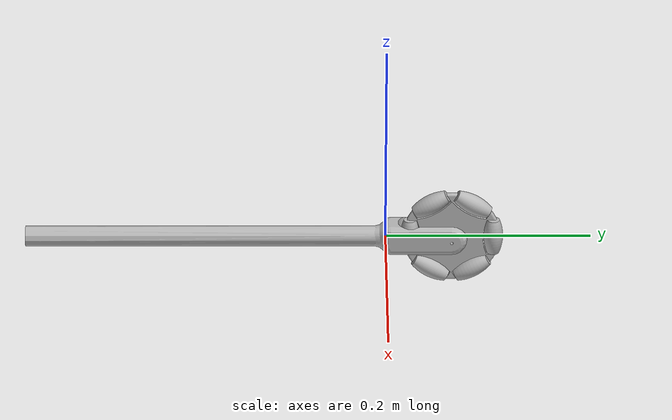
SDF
<sdf version='1.7'>
  <model name='stick_omni'>
    <link name='base_link'>
      <inertial>
        <pose>-0.000218 -0.130881 -1e-05 0 -0 0</pose>
        <mass>0.140488</mass>
        <inertia>
          <ixx>0.00215345</ixx>
          <ixy>7.88297e-11</ixy>
          <ixz>3.19074e-11</ixz>
          <iyy>1.09868e-05</iyy>
          <iyz>2.72267e-10</iyz>
          <izz>0.00215502</izz>
        </inertia>
      </inertial>
      <collision name='base_link_collision'>
        <pose>0 0 0 0 -0 0</pose>
        <geometry>
          <mesh>
            <scale>1 1 1</scale>
            <uri>model://stick_omni/meshes/base_link.STL</uri>
          </mesh>
        </geometry>
      </collision>
      <visual name='base_link_visual'>
        <pose>0 0 0 0 -0 0</pose>
        <geometry>
          <mesh>
            <scale>1 1 1</scale>
            <uri>model://stick_omni/meshes/base_link.STL</uri>
          </mesh>
        </geometry>
      </visual>
    </link>
    <joint name='joint_wheel' type='revolute'>
      <pose relative_to='base_link'>0 0.064488 0 -1.57079 -1.57079 -3.14159</pose>
      <parent>base_link</parent>
      <child>wheel</child>
      <axis>
        <xyz>0 1 0</xyz>
        <limit>
          <lower>-1e+16</lower>
          <upper>1e+16</upper>
        </limit>
        <dynamics>
          <damping>0</damping>
          <friction>0</friction>
          <spring_reference>0</spring_reference>
          <spring_stiffness>0</spring_stiffness>
        </dynamics>
      </axis>
    </joint>
    <link name='wheel'>
      <pose relative_to='joint_wheel'>0 0 0 0 -0 0</pose>
      <inertial>
        <pose>-1e-05 0.000218 -0 0 -0 0</pose>
        <mass>0.0242061</mass>
        <inertia>
          <ixx>7.57781e-06</ixx>
          <ixy>1.4672e-22</ixy>
          <ixz>1.34364e-20</ixz>
          <iyy>1.49068e-05</iyy>
          <iyz>1.52877e-22</iyz>
          <izz>7.57781e-06</izz>
        </inertia>
      </inertial>
      <collision name='wheel_collision'>
        <pose>0 0 0 0 -0 0</pose>
        <geometry>
          <mesh>
            <scale>1 1 1</scale>
            <uri>model://stick_omni/meshes/wheel.STL</uri>
          </mesh>
        </geometry>
      </collision>
      <visual name='wheel_visual'>
        <pose>0 0 0 0 -0 0</pose>
        <geometry>
          <mesh>
            <scale>1 1 1</scale>
            <uri>model://stick_omni/meshes/wheel.STL</uri>
          </mesh>
        </geometry>
      </visual>
    </link>
    <joint name='join_roll_6' type='revolute'>
      <pose relative_to='wheel'>0.035226 0.000218 0.020338 0.56207 -0.38025 -1.9656</pose>
      <parent>wheel</parent>
      <child>roll_6</child>
      <axis>
        <xyz>0.5 0 0.86603</xyz>
        <limit>
          <lower>-1e+16</lower>
          <upper>1e+16</upper>
        </limit>
        <dynamics>
          <damping>0</damping>
          <friction>0</friction>
          <spring_reference>0</spring_reference>
          <spring_stiffness>0</spring_stiffness>
        </dynamics>
      </axis>
    </joint>
    <link name='roll_6'>
      <pose relative_to='join_roll_6'>0 0 0 0 -0 0</pose>
      <inertial>
        <pose>2e-06 0 4e-06 0 -0 0</pose>
        <mass>0.00767853</mass>
        <inertia>
          <ixx>6.66512e-07</ixx>
          <ixy>-4.96308e-23</ixy>
          <ixz>-2.25197e-07</ixz>
          <iyy>7.9653e-07</iyy>
          <iyz>-5.29396e-23</iyz>
          <izz>4.06477e-07</izz>
        </inertia>
      </inertial>
      <collision name='roll_6_collision'>
        <pose>0 0 0 0 -0 0</pose>
        <geometry>
          <mesh>
            <scale>1 1 1</scale>
            <uri>model://stick_omni/meshes/roll_6.STL</uri>
          </mesh>
        </geometry>
      </collision>
      <visual name='roll_6_visual'>
        <pose>0 0 0 0 -0 0</pose>
        <geometry>
          <mesh>
            <scale>1 1 1</scale>
            <uri>model://stick_omni/meshes/roll_6.STL</uri>
          </mesh>
        </geometry>
      </visual>
    </link>
    <joint name='joint_roll_1' type='revolute'>
      <pose relative_to='wheel'>0 0.000218 0.040684 -1.2898 0.44783 -0.98279</pose>
      <parent>wheel</parent>
      <child>roll_1</child>
      <axis>
        <xyz>0.5 0 0.86603</xyz>
        <limit>
          <lower>-1e+16</lower>
          <upper>1e+16</upper>
        </limit>
        <dynamics>
          <damping>0</damping>
          <friction>0</friction>
          <spring_reference>0</spring_reference>
          <spring_stiffness>0</spring_stiffness>
        </dynamics>
      </axis>
    </joint>
    <link name='roll_1'>
      <pose relative_to='joint_roll_1'>0 0 0 0 -0 0</pose>
      <inertial>
        <pose>-5e-06 0 -8e-06 0 -0 0</pose>
        <mass>0.00767853</mass>
        <inertia>
          <ixx>6.66512e-07</ixx>
          <ixy>2.64698e-23</ixy>
          <ixz>-2.25197e-07</ixz>
          <iyy>7.9653e-07</iyy>
          <iyz>-3.97047e-23</iyz>
          <izz>4.06477e-07</izz>
        </inertia>
      </inertial>
      <collision name='roll_1_collision'>
        <pose>0 0 0 0 -0 0</pose>
        <geometry>
          <mesh>
            <scale>1 1 1</scale>
            <uri>model://stick_omni/meshes/roll_1.STL</uri>
          </mesh>
        </geometry>
      </collision>
      <visual name='roll_1_visual'>
        <pose>0 0 0 0 -0 0</pose>
        <geometry>
          <mesh>
            <scale>1 1 1</scale>
            <uri>model://stick_omni/meshes/roll_1.STL</uri>
          </mesh>
        </geometry>
      </visual>
    </link>
    <joint name='joint_roll_2' type='revolute'>
      <pose relative_to='wheel'>-0.035241 0.000218 0.020346 -0.56207 -0.38025 -1.176</pose>
      <parent>wheel</parent>
      <child>roll_2</child>
      <axis>
        <xyz>0.5 0 0.86603</xyz>
        <limit>
          <lower>-1e+16</lower>
          <upper>1e+16</upper>
        </limit>
        <dynamics>
          <damping>0</damping>
          <friction>0</friction>
          <spring_reference>0</spring_reference>
          <spring_stiffness>0</spring_stiffness>
        </dynamics>
      </axis>
    </joint>
    <link name='roll_2'>
      <pose relative_to='joint_roll_2'>0 0 0 0 -0 0</pose>
      <inertial>
        <pose>-2e-06 -0 -4e-06 0 -0 0</pose>
        <mass>0.00767853</mass>
        <inertia>
          <ixx>6.66512e-07</ixx>
          <ixy>7.27919e-23</ixy>
          <ixz>-2.25197e-07</ixz>
          <iyy>7.9653e-07</iyy>
          <iyz>4.63221e-23</iyz>
          <izz>4.06477e-07</izz>
        </inertia>
      </inertial>
      <collision name='roll_2_collision'>
        <pose>0 0 0 0 -0 0</pose>
        <geometry>
          <mesh>
            <scale>1 1 1</scale>
            <uri>model://stick_omni/meshes/roll_2.STL</uri>
          </mesh>
        </geometry>
      </collision>
      <visual name='roll_2_visual'>
        <pose>0 0 0 0 -0 0</pose>
        <geometry>
          <mesh>
            <scale>1 1 1</scale>
            <uri>model://stick_omni/meshes/roll_2.STL</uri>
          </mesh>
        </geometry>
      </visual>
    </link>
    <joint name='joint_roll_3' type='revolute'>
      <pose relative_to='wheel'>-0.035241 0.000218 -0.020346 0.56207 -0.38025 -1.9656</pose>
      <parent>wheel</parent>
      <child>roll_3</child>
      <axis>
        <xyz>0.5 0 0.86603</xyz>
        <limit>
          <lower>-1e+16</lower>
          <upper>1e+16</upper>
        </limit>
        <dynamics>
          <damping>0</damping>
          <friction>0</friction>
          <spring_reference>0</spring_reference>
          <spring_stiffness>0</spring_stiffness>
        </dynamics>
      </axis>
    </joint>
    <link name='roll_3'>
      <pose relative_to='joint_roll_3'>0 0 0 0 -0 0</pose>
      <inertial>
        <pose>2e-06 -0 4e-06 0 -0 0</pose>
        <mass>0.00767853</mass>
        <inertia>
          <ixx>6.66512e-07</ixx>
          <ixy>1.32349e-23</ixy>
          <ixz>-2.25197e-07</ixz>
          <iyy>7.9653e-07</iyy>
          <iyz>3.30872e-23</iyz>
          <izz>4.06477e-07</izz>
        </inertia>
      </inertial>
      <collision name='roll_3_collision'>
        <pose>0 0 0 0 -0 0</pose>
        <geometry>
          <mesh>
            <scale>1 1 1</scale>
            <uri>model://stick_omni/meshes/roll_3.STL</uri>
          </mesh>
        </geometry>
      </collision>
      <visual name='roll_3_visual'>
        <pose>0 0 0 0 -0 0</pose>
        <geometry>
          <mesh>
            <scale>1 1 1</scale>
            <uri>model://stick_omni/meshes/roll_3.STL</uri>
          </mesh>
        </geometry>
      </visual>
    </link>
    <joint name='joint_roll_4' type='revolute'>
      <pose relative_to='wheel'>0 0.000218 -0.040684 -1.2898 0.44783 -0.98279</pose>
      <parent>wheel</parent>
      <child>roll_4</child>
      <axis>
        <xyz>0.5 0 0.86603</xyz>
        <limit>
          <lower>-1e+16</lower>
          <upper>1e+16</upper>
        </limit>
        <dynamics>
          <damping>0</damping>
          <friction>0</friction>
          <spring_reference>0</spring_reference>
          <spring_stiffness>0</spring_stiffness>
        </dynamics>
      </axis>
    </joint>
    <link name='roll_4'>
      <pose relative_to='joint_roll_4'>0 0 0 0 -0 0</pose>
      <inertial>
        <pose>-5e-06 0 -8e-06 0 -0 0</pose>
        <mass>0.00767853</mass>
        <inertia>
          <ixx>6.66512e-07</ixx>
          <ixy>-2.64698e-23</ixy>
          <ixz>-2.25197e-07</ixz>
          <iyy>7.9653e-07</iyy>
          <iyz>-3.97047e-23</iyz>
          <izz>4.06477e-07</izz>
        </inertia>
      </inertial>
      <collision name='roll_4_collision'>
        <pose>0 0 0 0 -0 0</pose>
        <geometry>
          <mesh>
            <scale>1 1 1</scale>
            <uri>model://stick_omni/meshes/roll_4.STL</uri>
          </mesh>
        </geometry>
      </collision>
      <visual name='roll_4_visual'>
        <pose>0 0 0 0 -0 0</pose>
        <geometry>
          <mesh>
            <scale>1 1 1</scale>
            <uri>model://stick_omni/meshes/roll_4.STL</uri>
          </mesh>
        </geometry>
      </visual>
    </link>
    <joint name='joint_roll_5' type='revolute'>
      <pose relative_to='wheel'>0.035226 0.000218 -0.020338 -0.56207 -0.38025 -1.176</pose>
      <parent>wheel</parent>
      <child>roll_5</child>
      <axis>
        <xyz>0.5 0 0.86603</xyz>
        <limit>
          <lower>-1e+16</lower>
          <upper>1e+16</upper>
        </limit>
        <dynamics>
          <damping>0</damping>
          <friction>0</friction>
          <spring_reference>0</spring_reference>
          <spring_stiffness>0</spring_stiffness>
        </dynamics>
      </axis>
    </joint>
    <link name='roll_5'>
      <pose relative_to='joint_roll_5'>0 0 0 0 -0 0</pose>
      <inertial>
        <pose>-2e-06 -0 -4e-06 0 -0 0</pose>
        <mass>0.00767853</mass>
        <inertia>
          <ixx>6.66512e-07</ixx>
          <ixy>8.27181e-23</ixy>
          <ixz>-2.25197e-07</ixz>
          <iyy>7.9653e-07</iyy>
          <iyz>1.12497e-22</iyz>
          <izz>4.06477e-07</izz>
        </inertia>
      </inertial>
      <collision name='roll_5_collision'>
        <pose>0 0 0 0 -0 0</pose>
        <geometry>
          <mesh>
            <scale>1 1 1</scale>
            <uri>model://stick_omni/meshes/roll_5.STL</uri>
          </mesh>
        </geometry>
      </collision>
      <visual name='roll_5_visual'>
        <pose>0 0 0 0 -0 0</pose>
        <geometry>
          <mesh>
            <scale>1 1 1</scale>
            <uri>model://stick_omni/meshes/roll_5.STL</uri>
          </mesh>
        </geometry>
      </visual>
    </link>
  </model>
</sdf>
